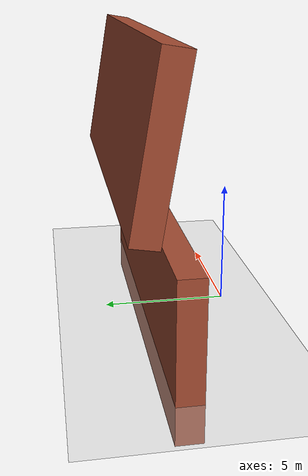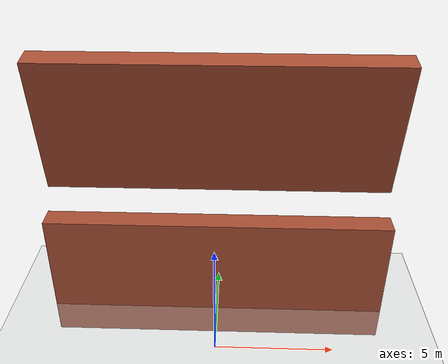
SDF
<?xml version="1.0" ?>
<sdf version='1.7'>
	<world name='wall'>
		<physics type="ode">
			<max_step_size>0.004</max_step_size>
			<real_time_factor>1.0</real_time_factor>
			<real_time_update_rate>250</real_time_update_rate>
		</physics>
		<plugin name='gz::sim::systems::Physics' filename='gz-sim-physics-system'/>
		<plugin name='gz::sim::systems::UserCommands' filename='gz-sim-user-commands-system'/>
		<plugin name='gz::sim::systems::SceneBroadcaster' filename='gz-sim-scene-broadcaster-system'/>
		<plugin name='gz::sim::systems::Contact' filename='gz-sim-contact-system'/>
		<plugin name='gz::sim::systems::Imu' filename='gz-sim-imu-system'/>
		<plugin name='gz::sim::systems::AirPressure' filename='gz-sim-air-pressure-system'/>
		<plugin name='gz::sim::systems::ApplyLinkWrench' filename='gz-sim-apply-link-wrench-system'/>
		<plugin name='gz::sim::systems::Sensors' filename='gz-sim-sensors-system'>
			<render_engine>ogre2</render_engine>
		</plugin>
		<gui fullscreen='false'>
			<plugin name='3D View' filename='GzScene3D'>
				<gz-gui>
					<title>3D View</title>
					<property type='bool' key='showTitleBar'>0</property>
					<property type='string' key='state'>docked</property>
				</gz-gui>
				<engine>ogre2</engine>
				<scene>scene</scene>
				<ambient_light>0.5984631152222222 0.5984631152222222 0.5984631152222222</ambient_light>
				<background_color>0.8984631152222222 0.8984631152222222 0.8984631152222222</background_color>
				<camera_pose>-6 0 6 0 0.5 0</camera_pose>
			</plugin>
			<plugin name='World control' filename='WorldControl'>
				<gz-gui>
					<title>World control</title>
					<property type='bool' key='showTitleBar'>0</property>
					<property type='bool' key='resizable'>0</property>
					<property type='double' key='height'>72</property>
					<property type='double' key='width'>121</property>
					<property type='double' key='z'>1</property>
					<property type='string' key='state'>floating</property>
					<anchors target='3D View'>
						<line own='left' target='left'/>
						<line own='bottom' target='bottom'/>
					</anchors>
				</gz-gui>
				<play_pause>1</play_pause>
				<step>1</step>
				<start_paused>1</start_paused>
			</plugin>
			<plugin name='World stats' filename='WorldStats'>
				<gz-gui>
					<title>World stats</title>
					<property type='bool' key='showTitleBar'>0</property>
					<property type='bool' key='resizable'>0</property>
					<property type='double' key='height'>110</property>
					<property type='double' key='width'>290</property>
					<property type='double' key='z'>1</property>
					<property type='string' key='state'>floating</property>
					<anchors target='3D View'>
						<line own='right' target='right'/>
						<line own='bottom' target='bottom'/>
					</anchors>
				</gz-gui>
				<sim_time>1</sim_time>
				<real_time>1</real_time>
				<real_time_factor>1</real_time_factor>
				<iterations>1</iterations>
			</plugin>
			<plugin name='Entity tree' filename='EntityTree'/>
		</gui>
		<gravity>0 0 -9.8</gravity>
		<magnetic_field>6e-06 2.3e-05 -4.2e-05</magnetic_field>
		<atmosphere type='adiabatic'/>
		<scene>
			<grid>false</grid>
			<ambient>0.4 0.4 0.4 1</ambient>
			<background>0.7 0.7 0.7 1</background>
			<shadows>true</shadows>
		</scene>
		<light name='sun' type='directional'>
			<cast_shadows>1</cast_shadows>
			<pose>0 0 10 0 -0 0</pose>
			<diffuse>0.8 0.8 0.8 1</diffuse>
			<specular>0.2 0.2 0.2 1</specular>
			<attenuation>
				<range>1000</range>
				<constant>0.9</constant>
				<linear>0.01</linear>
				<quadratic>0.001</quadratic>
			</attenuation>
			<direction>-0.5 0.1 -0.9</direction>
		</light>
		<light name='user_directional_light_0' type='directional'>
			<pose>-5.92604 -3.56511 1 0 -0 0</pose>
			<diffuse>0.5 0.5 0.5 1</diffuse>
			<specular>0.1 0.1 0.1 1</specular>
			<direction>0.1 0.1 -0.9</direction>
			<attenuation>
				<range>20</range>
				<constant>0.5</constant>
				<linear>0.01</linear>
				<quadratic>0.001</quadratic>
			</attenuation>
			<cast_shadows>1</cast_shadows>
		</light>
		<model name='ground_plane'>
			<static>1</static>
			<link name='link'>
				<collision name='collision'>
					<geometry>
						<plane>
							<normal>0 0 1</normal>
							<size>100 100</size>
						</plane>
					</geometry>
					<surface>
						<friction>
							<ode>
								<mu>100</mu>
								<mu2>50</mu2>
							</ode>
						</friction>
					</surface>
				</collision>
				<visual name='visual'>
					<cast_shadows>0</cast_shadows>
					<geometry>
						<plane>
							<normal>0 0 1</normal>
							<size>100 100</size>
						</plane>
					</geometry>
					<material>
						<script>
							<uri>file://media/materials/scripts/gazebo.material</uri>
							<name>Gazebo/Grey</name>
						</script>
					</material>
				</visual>
			</link>
		</model>
		<model name='mpc_wall'>
			<static>1</static>
			<pose>0 3 1.5 0 -0 1.57</pose>
			<link name='link'>
				<inertial>
					<mass>10000</mass>
					<inertia>
						<ixx>216751</ixx>
						<ixy>0</ixy>
						<ixz>0</ixz>
						<iyy>30833.3</iyy>
						<iyz>0</iyz>
						<izz>187584</izz>
					</inertia>
				</inertial>
				<visual name='visual'>
					<geometry>
						<box>
							<size>1 15 6</size>
						</box>
					</geometry>
					<material>
						<script>
							<name>Gazebo/Bricks</name>
							<uri>file://media/materials/scripts/gazebo.material</uri>
						</script>
					</material>
				</visual>
				<collision name='collision'>
					<geometry>
						<box>
							<size>1 14.97 6</size>
						</box>
					</geometry>
				</collision>
			</link>
		</model>
		<model name='mpc_wall_inclined'>
			<static>1</static>
			<pose>0 4 8.5 0 -0.1635 1.57</pose>
			<link name='link'>
				<inertial>
					<mass>10000</mass>
					<inertia>
						<ixx>216751</ixx>
						<ixy>0</ixy>
						<ixz>0</ixz>
						<iyy>30833.3</iyy>
						<iyz>0</iyz>
						<izz>187584</izz>
					</inertia>
				</inertial>
				<visual name='visual'>
					<geometry>
						<box>
							<size>1 15 6</size>
						</box>
					</geometry>
					<material>
						<script>
							<name>Gazebo/Bricks</name>
							<uri>file://media/materials/scripts/gazebo.material</uri>
						</script>
					</material>
				</visual>
				<collision name='collision'>
					<geometry>
						<box>
							<size>1 14.97 6</size>
						</box>
					</geometry>
				</collision>
			</link>
		</model>
		<wind/>
		<spherical_coordinates>
			<surface_model>EARTH_WGS84</surface_model>
			<latitude_deg>0</latitude_deg>
			<longitude_deg>0</longitude_deg>
			<elevation>0</elevation>
			<heading_deg>0</heading_deg>
		</spherical_coordinates>
	</world>
</sdf>
